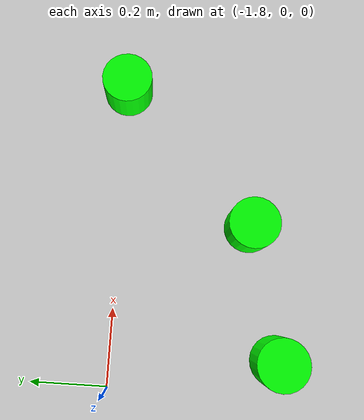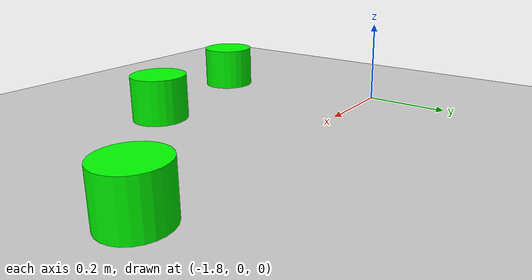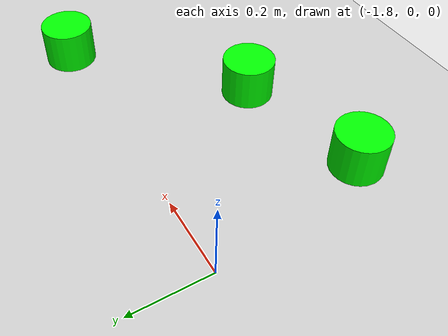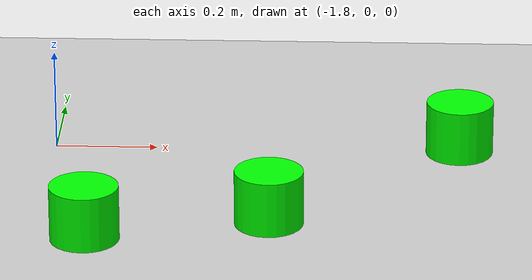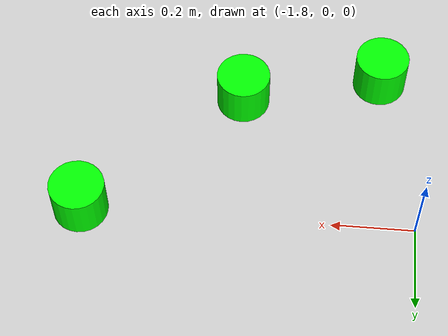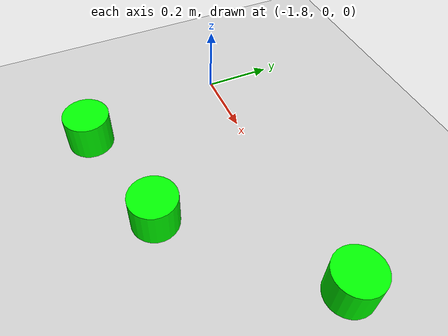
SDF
<sdf version="1.7">
 <world name="default">
  <model name="ground_plane">
   <static>1</static>
   <link name="link">
    <collision name="collision">
     <geometry><plane><normal>0 0 1</normal><size>100 100</size></plane></geometry>
     <surface>
      <contact><collide_bitmask>65535</collide_bitmask></contact>
      <friction><ode><mu>100</mu><mu2>50</mu2></ode></friction>
     </surface>
    </collision>
    <visual name="visual">
     <cast_shadows>0</cast_shadows>
     <geometry><plane><normal>0 0 1</normal><size>100 100</size></plane></geometry>
     <material>
      <script><uri>file://media/materials/scripts/gazebo.material</uri><name>Gazebo/Grey</name></script>
     </material>
    </visual>
   </link>
  </model>
  <model name="latinha_verde_clone">
   <link name="link">
    <inertial>
     <mass>1</mass>
     <inertia><ixx>0.145833</ixx><ixy>0</ixy><ixz>0</ixz><iyy>0.145833</iyy><iyz>0</iyz><izz>0.125</izz></inertia>
    </inertial>
    <visual name="visual">
     <geometry><cylinder><radius>0.066</radius><length>0.114</length></cylinder></geometry>
     <material>
      <script><name>Gazebo/Gray</name><uri>file://media/materials/scripts/gazebo.material</uri></script>
      <shader type="pixel"><normal_map>__default__</normal_map></shader>
      <ambient>0 1 0 1</ambient>
      <diffuse>0 1 0 1</diffuse>
      <specular>0.1 0.1 0.1 1</specular>
      <emissive>0 0 0 1</emissive>
     </material>
    </visual>
    <collision name="collision">
     <geometry><cylinder><radius>0.05</radius><length>0.1</length></cylinder></geometry>
     <surface>
      <friction>
       <ode><mu>1</mu><mu2>1</mu2><fdir1>0 0 0</fdir1><slip1>0</slip1><slip2>0</slip2></ode>
       <torsional>
        <coefficient>1</coefficient>
        <patch_radius>0</patch_radius>
        <surface_radius>0</surface_radius>
        <use_patch_radius>1</use_patch_radius>
        <ode><slip>0</slip></ode>
       </torsional>
      </friction>
      <bounce><restitution_coefficient>0</restitution_coefficient><threshold>1e+06</threshold></bounce>
      <contact>
       <collide_without_contact>0</collide_without_contact>
       <collide_without_contact_bitmask>1</collide_without_contact_bitmask>
       <collide_bitmask>1</collide_bitmask>
       <ode>
        <soft_cfm>0</soft_cfm>
        <soft_erp>0.2</soft_erp>
        <kp>1e+13</kp>
        <kd>1</kd>
        <max_vel>0.01</max_vel>
        <min_depth>0</min_depth>
       </ode>
       <bullet>
        <split_impulse>1</split_impulse>
        <split_impulse_penetration_threshold>-0.01</split_impulse_penetration_threshold>
        <soft_cfm>0</soft_cfm>
        <soft_erp>0.2</soft_erp>
        <kp>1e+13</kp>
        <kd>1</kd>
       </bullet>
      </contact>
     </surface>
    </collision>
   </link>
   <static>0</static>
   <pose>-1 0 0.049996 0 -0 8.4e-05</pose>
  </model>
  <model name="latinha_verde_clone_8_clone_2_clone_2_clone_30">
   <link name="link">
    <inertial>
     <mass>1</mass>
     <inertia><ixx>0.145833</ixx><ixy>0</ixy><ixz>0</ixz><iyy>0.145833</iyy><iyz>0</iyz><izz>0.125</izz></inertia>
    </inertial>
    <visual name="visual">
     <geometry><cylinder><radius>0.066</radius><length>0.114</length></cylinder></geometry>
     <material>
      <script><name>Gazebo/Gray</name><uri>file://media/materials/scripts/gazebo.material</uri></script>
      <shader type="pixel"><normal_map>__default__</normal_map></shader>
      <ambient>0 1 0 1</ambient>
      <diffuse>0 1 0 1</diffuse>
      <specular>0.1 0.1 0.1 1</specular>
      <emissive>0 0 0 1</emissive>
     </material>
    </visual>
    <collision name="collision">
     <geometry><cylinder><radius>0.05</radius><length>0.1</length></cylinder></geometry>
     <surface>
      <friction>
       <ode><mu>1</mu><mu2>1</mu2><fdir1>0 0 0</fdir1><slip1>0</slip1><slip2>0</slip2></ode>
       <torsional>
        <coefficient>1</coefficient>
        <patch_radius>0</patch_radius>
        <surface_radius>0</surface_radius>
        <use_patch_radius>1</use_patch_radius>
        <ode><slip>0</slip></ode>
       </torsional>
      </friction>
      <bounce><restitution_coefficient>0</restitution_coefficient><threshold>1e+06</threshold></bounce>
      <contact>
       <collide_without_contact>0</collide_without_contact>
       <collide_without_contact_bitmask>1</collide_without_contact_bitmask>
       <collide_bitmask>1</collide_bitmask>
       <ode>
        <soft_cfm>0</soft_cfm>
        <soft_erp>0.2</soft_erp>
        <kp>1e+13</kp>
        <kd>1</kd>
        <max_vel>0.01</max_vel>
        <min_depth>0</min_depth>
       </ode>
       <bullet>
        <split_impulse>1</split_impulse>
        <split_impulse_penetration_threshold>-0.01</split_impulse_penetration_threshold>
        <soft_cfm>0</soft_cfm>
        <soft_erp>0.2</soft_erp>
        <kp>1e+13</kp>
        <kd>1</kd>
       </bullet>
      </contact>
     </surface>
    </collision>
   </link>
   <static>0</static>
   <pose>-1.70826 -0.429615 0.05 0 -0 0.000118</pose>
  </model>
  <model name="latinha_verde_clone_8_clone_2_clone_2_clone_31">
   <link name="link">
    <inertial>
     <mass>1</mass>
     <inertia><ixx>0.145833</ixx><ixy>0</ixy><ixz>0</ixz><iyy>0.145833</iyy><iyz>0</iyz><izz>0.125</izz></inertia>
    </inertial>
    <visual name="visual">
     <geometry><cylinder><radius>0.066</radius><length>0.114</length></cylinder></geometry>
     <material>
      <script><name>Gazebo/Gray</name><uri>file://media/materials/scripts/gazebo.material</uri></script>
      <shader type="pixel"><normal_map>__default__</normal_map></shader>
      <ambient>0 1 0 1</ambient>
      <diffuse>0 1 0 1</diffuse>
      <specular>0.1 0.1 0.1 1</specular>
      <emissive>0 0 0 1</emissive>
     </material>
    </visual>
    <collision name="collision">
     <geometry><cylinder><radius>0.05</radius><length>0.1</length></cylinder></geometry>
     <surface>
      <friction>
       <ode><mu>1</mu><mu2>1</mu2><fdir1>0 0 0</fdir1><slip1>0</slip1><slip2>0</slip2></ode>
       <torsional>
        <coefficient>1</coefficient>
        <patch_radius>0</patch_radius>
        <surface_radius>0</surface_radius>
        <use_patch_radius>1</use_patch_radius>
        <ode><slip>0</slip></ode>
       </torsional>
      </friction>
      <bounce><restitution_coefficient>0</restitution_coefficient><threshold>1e+06</threshold></bounce>
      <contact>
       <collide_without_contact>0</collide_without_contact>
       <collide_without_contact_bitmask>1</collide_without_contact_bitmask>
       <collide_bitmask>1</collide_bitmask>
       <ode>
        <soft_cfm>0</soft_cfm>
        <soft_erp>0.2</soft_erp>
        <kp>1e+13</kp>
        <kd>1</kd>
        <max_vel>0.01</max_vel>
        <min_depth>0</min_depth>
       </ode>
       <bullet>
        <split_impulse>1</split_impulse>
        <split_impulse_penetration_threshold>-0.01</split_impulse_penetration_threshold>
        <soft_cfm>0</soft_cfm>
        <soft_erp>0.2</soft_erp>
        <kp>1e+13</kp>
        <kd>1</kd>
       </bullet>
      </contact>
     </surface>
    </collision>
   </link>
   <static>0</static>
   <pose>-1.36449 -0.348915 0.05 0 -0 0.000118</pose>
  </model>
 </world>
</sdf>
